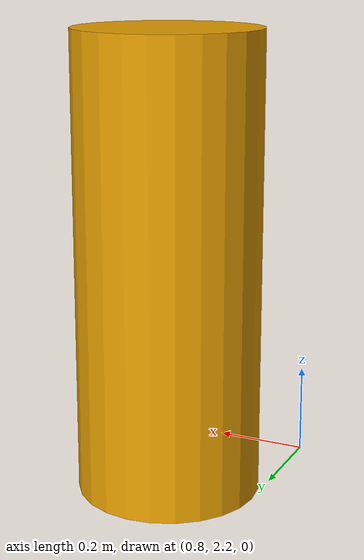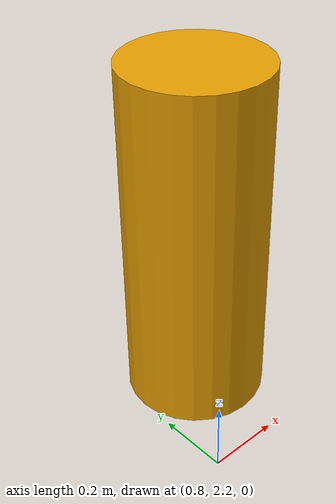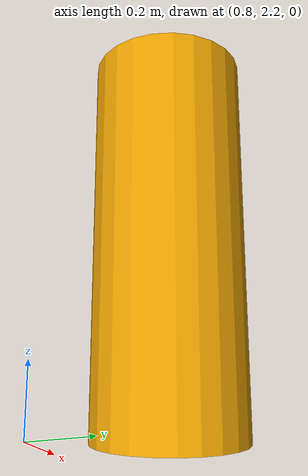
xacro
<?xml version="1.0" ?>
<robot name="mrm2" xmlns:xacro="http://www.ros.org/wiki/xacro">

    <!-- BGN - Include -->
    <xacro:include filename="$(find crazyflie_description)/urdf/links_joints.xacro" />
    <!-- END - Include -->

    <!-- BGN - Obstacles Description  -->

    <xacro:m_link_cylinder name="link_02"
                           origin_rpy="0 0 0" origin_xyz="1 2.5 0.5"
                           mass="157.633"
                           ixx="13.235" ixy="0" ixz="0"
                           iyy="13.235" iyz="0"
                           izz="9.655"
                           length="1" radius="0.2" />

    <!-- END - Obstacles Description  -->

</robot>

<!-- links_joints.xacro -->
<robot xmlns:xacro="http://www.ros.org/wiki/xacro">

    <xacro:macro name="m_joint" params="name type axis_xyz origin_rpy origin_xyz parent child limit_e limit_l limit_u limit_v" >
        <joint name="${name}" type="${type}" >
            <axis xyz="${axis_xyz}" />
            <limit effort="${limit_e}" lower="${limit_l}" upper="${limit_u}" velocity="${limit_v}" />
            <origin rpy="${origin_rpy}" xyz="${origin_xyz}" />
            <parent link="${parent}" />
            <child link="${child}" />
        </joint>
        <transmission name="trans_${name}">
            <type>transmission_interface/SimpleTransmission</type>
            <joint name="${name}">
                <hardwareInterface>hardware_interface/EffortJointInterface</hardwareInterface>
            </joint>
            <actuator name="motor_${name}">
                <hardwareInterface>hardware_interface/EffortJointInterface</hardwareInterface>
                <mechanicalReduction>1</mechanicalReduction>
            </actuator>
        </transmission>
    </xacro:macro>

    <xacro:macro name="m_link_cylinder" params="name origin_xyz origin_rpy radius length mass ixx ixy ixz iyy iyz izz" >
        <link name="${name}">
            <inertial>
                <mass value="${mass}" />
                <origin rpy="${origin_rpy}" xyz="${origin_xyz}" />
                <inertia ixx="${ixx}" ixy="${ixy}" ixz="${ixz}" iyy="${iyy}" iyz="${iyz}" izz="${izz}" />
            </inertial>

            <collision>
                <origin rpy="${origin_rpy}" xyz="${origin_xyz}" />
                <geometry>
                    <cylinder radius="${radius}" length="${length}" />
                </geometry>
            </collision>

            <visual>
                <origin rpy="${origin_rpy}" xyz="${origin_xyz}" />
                <geometry>
                    <cylinder radius="${radius}" length="${length}" />
                </geometry>
            </visual>
        </link>
    </xacro:macro>

    <xacro:macro name="m_link_box" params="name origin_xyz origin_rpy size mass ixx ixy ixz iyy iyz izz" >
        <link name="${name}">
            <inertial>
                <mass value="${mass}" />
                <origin rpy="${origin_rpy}" xyz="${origin_xyz}" />
                <inertia ixx="${ixx}" ixy="${ixy}" ixz="${ixz}" iyy="${iyy}" iyz="${iyz}" izz="${izz}" />
            </inertial>

            <collision>
                <origin rpy="${origin_rpy}" xyz="${origin_xyz}" />
                <geometry>
                    <box size="${size}" />
                </geometry>
            </collision>

            <visual>
                <origin rpy="${origin_rpy}" xyz="${origin_xyz}" />
                <geometry>
                    <box size="${size}" />
                </geometry>
            </visual>
        </link>
    </xacro:macro>

    <xacro:macro name="m_link_mesh" params="name origin_xyz origin_rpy meshfile meshscale mass ixx ixy ixz iyy iyz izz" >
        <link name="${name}">
            <inertial>
                <mass value="${mass}" />
                <origin rpy="${origin_rpy}" xyz="${origin_xyz}" />
                <inertia ixx="${ixx}" ixy="${ixy}" ixz="${ixz}" iyy="${iyy}" iyz="${iyz}" izz="${izz}" />
            </inertial>

            <collision>
                <origin rpy="${origin_rpy}" xyz="${origin_xyz}" />
                <geometry>
                    <mesh filename="${meshfile}"  scale="${meshscale}" />
                </geometry>
            </collision>

            <visual>
                <origin rpy="${origin_rpy}" xyz="${origin_xyz}" />
                <geometry>
                    <mesh filename="${meshfile}"  scale="${meshscale}" />
                </geometry>
                <material name="light_black" />
            </visual>
        </link>
    </xacro:macro>

</robot>
